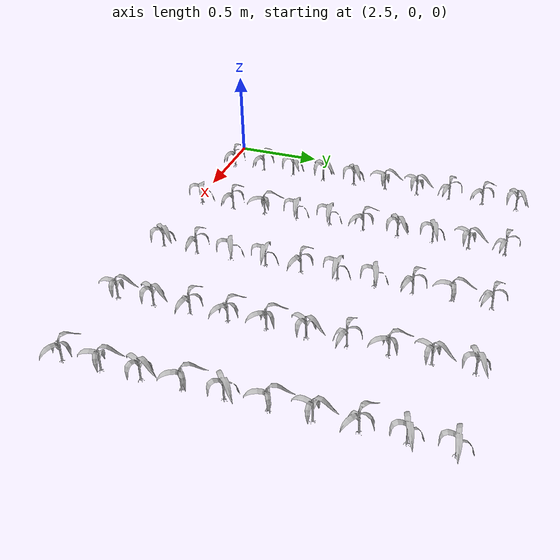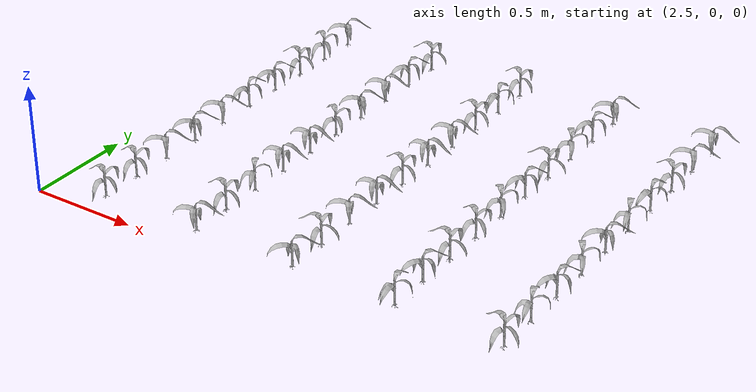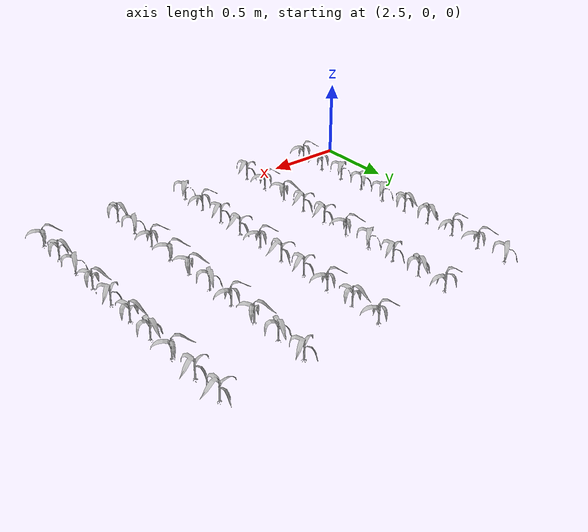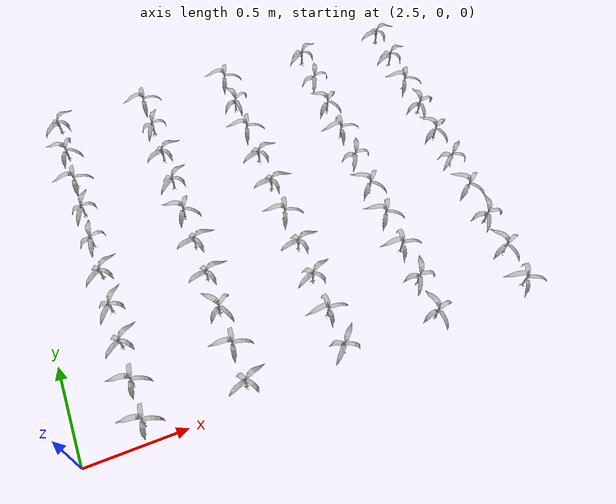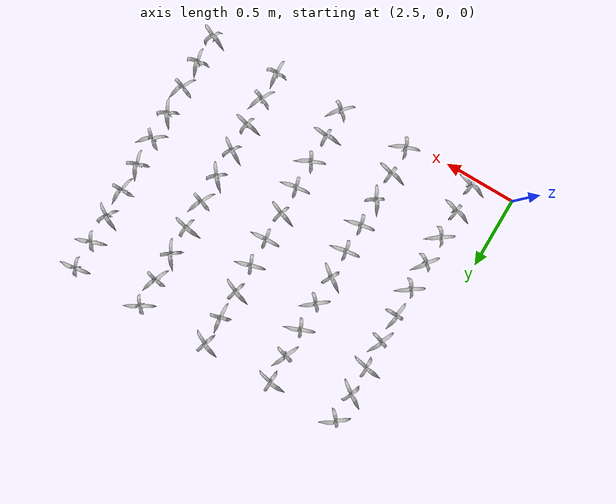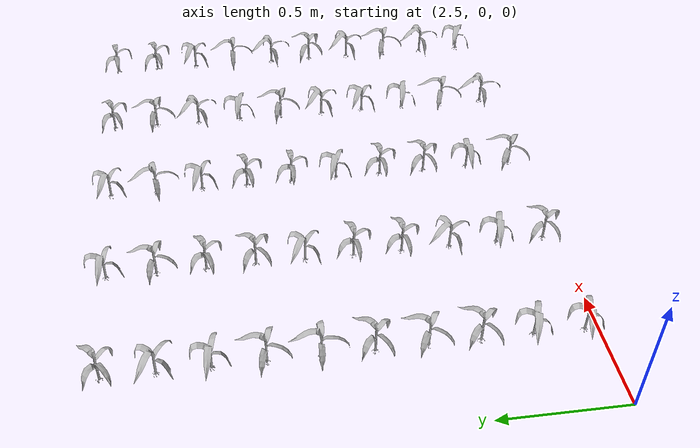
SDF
<sdf version="1.7">
 <world name="default">
  <model name="maize_2.816066532335432_0.07500000000000018">
   <static>1</static>
   <link name="link">
    <inertial>
     <mass>0.2</mass>
     <inertia>
      <ixx>0.166667</ixx>
      <ixy>0</ixy>
      <ixz>0</ixz>
      <iyy>0.166667</iyy>
      <iyz>0</iyz>
      <izz>0.166667</izz>
     </inertia>
    </inertial>
    <collision name="collision">
     <geometry><mesh><uri>model://corn_3/meshes/corn.dae</uri><scale>0.25 0.25 0.25</scale></mesh></geometry>
     <surface>
      <friction><ode><mu>0</mu><mu2>0</mu2></ode></friction>
      <contact><ode><kp>0</kp><kd>0</kd><max_vel>0</max_vel><min_depth>0.002</min_depth></ode></contact>
     </surface>
    </collision>
    <visual name="visual">
     <geometry><mesh><uri>model://corn_3/meshes/corn.dae</uri><scale>0.25 0.25 0.25</scale></mesh></geometry>
    </visual>
    <velocity_decay><linear>0</linear><angular>0</angular></velocity_decay>
   </link>
   <pose>2.81607 0.075 0.05 0 -0 2.91875</pose>
  </model>
  <model name="maize_2.816066532335432_0.27000000000000046">
   <static>1</static>
   <link name="link">
    <inertial>
     <mass>0.2</mass>
     <inertia>
      <ixx>0.166667</ixx>
      <ixy>0</ixy>
      <ixz>0</ixz>
      <iyy>0.166667</iyy>
      <iyz>0</iyz>
      <izz>0.166667</izz>
     </inertia>
    </inertial>
    <collision name="collision">
     <geometry><mesh><uri>model://corn_3/meshes/corn.dae</uri><scale>0.25 0.25 0.25</scale></mesh></geometry>
     <surface>
      <friction><ode><mu>0</mu><mu2>0</mu2></ode></friction>
      <contact><ode><kp>0</kp><kd>0</kd><max_vel>0</max_vel><min_depth>0.002</min_depth></ode></contact>
     </surface>
    </collision>
    <visual name="visual">
     <geometry><mesh><uri>model://corn_3/meshes/corn.dae</uri><scale>0.25 0.25 0.25</scale></mesh></geometry>
    </visual>
    <velocity_decay><linear>0</linear><angular>0</angular></velocity_decay>
   </link>
   <pose>2.81607 0.27 0.05 0 -0 2.89015</pose>
  </model>
  <model name="maize_2.816066532335432_0.46500000000000075">
   <static>1</static>
   <link name="link">
    <inertial>
     <mass>0.2</mass>
     <inertia>
      <ixx>0.166667</ixx>
      <ixy>0</ixy>
      <ixz>0</ixz>
      <iyy>0.166667</iyy>
      <iyz>0</iyz>
      <izz>0.166667</izz>
     </inertia>
    </inertial>
    <collision name="collision">
     <geometry><mesh><uri>model://corn_3/meshes/corn.dae</uri><scale>0.25 0.25 0.25</scale></mesh></geometry>
     <surface>
      <friction><ode><mu>0</mu><mu2>0</mu2></ode></friction>
      <contact><ode><kp>0</kp><kd>0</kd><max_vel>0</max_vel><min_depth>0.002</min_depth></ode></contact>
     </surface>
    </collision>
    <visual name="visual">
     <geometry><mesh><uri>model://corn_3/meshes/corn.dae</uri><scale>0.25 0.25 0.25</scale></mesh></geometry>
    </visual>
    <velocity_decay><linear>0</linear><angular>0</angular></velocity_decay>
   </link>
   <pose>2.81607 0.465 0.05 0 -0 0.669238</pose>
  </model>
  <model name="maize_2.816066532335432_0.6600000000000001">
   <static>1</static>
   <link name="link">
    <inertial>
     <mass>0.2</mass>
     <inertia>
      <ixx>0.166667</ixx>
      <ixy>0</ixy>
      <ixz>0</ixz>
      <iyy>0.166667</iyy>
      <iyz>0</iyz>
      <izz>0.166667</izz>
     </inertia>
    </inertial>
    <collision name="collision">
     <geometry><mesh><uri>model://corn_3/meshes/corn.dae</uri><scale>0.25 0.25 0.25</scale></mesh></geometry>
     <surface>
      <friction><ode><mu>0</mu><mu2>0</mu2></ode></friction>
      <contact><ode><kp>0</kp><kd>0</kd><max_vel>0</max_vel><min_depth>0.002</min_depth></ode></contact>
     </surface>
    </collision>
    <visual name="visual">
     <geometry><mesh><uri>model://corn_3/meshes/corn.dae</uri><scale>0.25 0.25 0.25</scale></mesh></geometry>
    </visual>
    <velocity_decay><linear>0</linear><angular>0</angular></velocity_decay>
   </link>
   <pose>2.81607 0.66 0.05 0 -0 0.967541</pose>
  </model>
  <model name="maize_2.816066532335432_0.8550000000000004">
   <static>1</static>
   <link name="link">
    <inertial>
     <mass>0.2</mass>
     <inertia>
      <ixx>0.166667</ixx>
      <ixy>0</ixy>
      <ixz>0</ixz>
      <iyy>0.166667</iyy>
      <iyz>0</iyz>
      <izz>0.166667</izz>
     </inertia>
    </inertial>
    <collision name="collision">
     <geometry><mesh><uri>model://corn_3/meshes/corn.dae</uri><scale>0.25 0.25 0.25</scale></mesh></geometry>
     <surface>
      <friction><ode><mu>0</mu><mu2>0</mu2></ode></friction>
      <contact><ode><kp>0</kp><kd>0</kd><max_vel>0</max_vel><min_depth>0.002</min_depth></ode></contact>
     </surface>
    </collision>
    <visual name="visual">
     <geometry><mesh><uri>model://corn_3/meshes/corn.dae</uri><scale>0.25 0.25 0.25</scale></mesh></geometry>
    </visual>
    <velocity_decay><linear>0</linear><angular>0</angular></velocity_decay>
   </link>
   <pose>2.81607 0.855 0.05 0 -0 0.657436</pose>
  </model>
  <model name="maize_2.816066532335432_1.0500000000000007">
   <static>1</static>
   <link name="link">
    <inertial>
     <mass>0.2</mass>
     <inertia>
      <ixx>0.166667</ixx>
      <ixy>0</ixy>
      <ixz>0</ixz>
      <iyy>0.166667</iyy>
      <iyz>0</iyz>
      <izz>0.166667</izz>
     </inertia>
    </inertial>
    <collision name="collision">
     <geometry><mesh><uri>model://corn_3/meshes/corn.dae</uri><scale>0.25 0.25 0.25</scale></mesh></geometry>
     <surface>
      <friction><ode><mu>0</mu><mu2>0</mu2></ode></friction>
      <contact><ode><kp>0</kp><kd>0</kd><max_vel>0</max_vel><min_depth>0.002</min_depth></ode></contact>
     </surface>
    </collision>
    <visual name="visual">
     <geometry><mesh><uri>model://corn_3/meshes/corn.dae</uri><scale>0.25 0.25 0.25</scale></mesh></geometry>
    </visual>
    <velocity_decay><linear>0</linear><angular>0</angular></velocity_decay>
   </link>
   <pose>2.81607 1.05 0.05 0 -0 1.4945</pose>
  </model>
  <model name="maize_2.816066532335432_1.245">
   <static>1</static>
   <link name="link">
    <inertial>
     <mass>0.2</mass>
     <inertia>
      <ixx>0.166667</ixx>
      <ixy>0</ixy>
      <ixz>0</ixz>
      <iyy>0.166667</iyy>
      <iyz>0</iyz>
      <izz>0.166667</izz>
     </inertia>
    </inertial>
    <collision name="collision">
     <geometry><mesh><uri>model://corn_3/meshes/corn.dae</uri><scale>0.25 0.25 0.25</scale></mesh></geometry>
     <surface>
      <friction><ode><mu>0</mu><mu2>0</mu2></ode></friction>
      <contact><ode><kp>0</kp><kd>0</kd><max_vel>0</max_vel><min_depth>0.002</min_depth></ode></contact>
     </surface>
    </collision>
    <visual name="visual">
     <geometry><mesh><uri>model://corn_3/meshes/corn.dae</uri><scale>0.25 0.25 0.25</scale></mesh></geometry>
    </visual>
    <velocity_decay><linear>0</linear><angular>0</angular></velocity_decay>
   </link>
   <pose>2.81607 1.245 0.05 0 -0 1.20353</pose>
  </model>
  <model name="maize_2.816066532335432_1.4400000000000004">
   <static>1</static>
   <link name="link">
    <inertial>
     <mass>0.2</mass>
     <inertia>
      <ixx>0.166667</ixx>
      <ixy>0</ixy>
      <ixz>0</ixz>
      <iyy>0.166667</iyy>
      <iyz>0</iyz>
      <izz>0.166667</izz>
     </inertia>
    </inertial>
    <collision name="collision">
     <geometry><mesh><uri>model://corn_3/meshes/corn.dae</uri><scale>0.25 0.25 0.25</scale></mesh></geometry>
     <surface>
      <friction><ode><mu>0</mu><mu2>0</mu2></ode></friction>
      <contact><ode><kp>0</kp><kd>0</kd><max_vel>0</max_vel><min_depth>0.002</min_depth></ode></contact>
     </surface>
    </collision>
    <visual name="visual">
     <geometry><mesh><uri>model://corn_3/meshes/corn.dae</uri><scale>0.25 0.25 0.25</scale></mesh></geometry>
    </visual>
    <velocity_decay><linear>0</linear><angular>0</angular></velocity_decay>
   </link>
   <pose>2.81607 1.44 0.05 0 -0 3.00998</pose>
  </model>
  <model name="maize_2.816066532335432_1.6350000000000007">
   <static>1</static>
   <link name="link">
    <inertial>
     <mass>0.2</mass>
     <inertia>
      <ixx>0.166667</ixx>
      <ixy>0</ixy>
      <ixz>0</ixz>
      <iyy>0.166667</iyy>
      <iyz>0</iyz>
      <izz>0.166667</izz>
     </inertia>
    </inertial>
    <collision name="collision">
     <geometry><mesh><uri>model://corn_3/meshes/corn.dae</uri><scale>0.25 0.25 0.25</scale></mesh></geometry>
     <surface>
      <friction><ode><mu>0</mu><mu2>0</mu2></ode></friction>
      <contact><ode><kp>0</kp><kd>0</kd><max_vel>0</max_vel><min_depth>0.002</min_depth></ode></contact>
     </surface>
    </collision>
    <visual name="visual">
     <geometry><mesh><uri>model://corn_3/meshes/corn.dae</uri><scale>0.25 0.25 0.25</scale></mesh></geometry>
    </visual>
    <velocity_decay><linear>0</linear><angular>0</angular></velocity_decay>
   </link>
   <pose>2.81607 1.635 0.05 0 -0 2.59487</pose>
  </model>
  <model name="maize_2.816066532335432_1.83">
   <static>1</static>
   <link name="link">
    <inertial>
     <mass>0.2</mass>
     <inertia>
      <ixx>0.166667</ixx>
      <ixy>0</ixy>
      <ixz>0</ixz>
      <iyy>0.166667</iyy>
      <iyz>0</iyz>
      <izz>0.166667</izz>
     </inertia>
    </inertial>
    <collision name="collision">
     <geometry><mesh><uri>model://corn_3/meshes/corn.dae</uri><scale>0.25 0.25 0.25</scale></mesh></geometry>
     <surface>
      <friction><ode><mu>0</mu><mu2>0</mu2></ode></friction>
      <contact><ode><kp>0</kp><kd>0</kd><max_vel>0</max_vel><min_depth>0.002</min_depth></ode></contact>
     </surface>
    </collision>
    <visual name="visual">
     <geometry><mesh><uri>model://corn_3/meshes/corn.dae</uri><scale>0.25 0.25 0.25</scale></mesh></geometry>
    </visual>
    <velocity_decay><linear>0</linear><angular>0</angular></velocity_decay>
   </link>
   <pose>2.81607 1.83 0.05 0 -0 0.683523</pose>
  </model>
  <model name="maize_3.304538114598593_0.07500000000000018">
   <static>1</static>
   <link name="link">
    <inertial>
     <mass>0.2</mass>
     <inertia>
      <ixx>0.166667</ixx>
      <ixy>0</ixy>
      <ixz>0</ixz>
      <iyy>0.166667</iyy>
      <iyz>0</iyz>
      <izz>0.166667</izz>
     </inertia>
    </inertial>
    <collision name="collision">
     <geometry><mesh><uri>model://corn_3/meshes/corn.dae</uri><scale>0.25 0.25 0.25</scale></mesh></geometry>
     <surface>
      <friction><ode><mu>0</mu><mu2>0</mu2></ode></friction>
      <contact><ode><kp>0</kp><kd>0</kd><max_vel>0</max_vel><min_depth>0.002</min_depth></ode></contact>
     </surface>
    </collision>
    <visual name="visual">
     <geometry><mesh><uri>model://corn_3/meshes/corn.dae</uri><scale>0.25 0.25 0.25</scale></mesh></geometry>
    </visual>
    <velocity_decay><linear>0</linear><angular>0</angular></velocity_decay>
   </link>
   <pose>3.30454 0.075 0.05 0 -0 0.448473</pose>
  </model>
  <model name="maize_3.304538114598593_0.27000000000000046">
   <static>1</static>
   <link name="link">
    <inertial>
     <mass>0.2</mass>
     <inertia>
      <ixx>0.166667</ixx>
      <ixy>0</ixy>
      <ixz>0</ixz>
      <iyy>0.166667</iyy>
      <iyz>0</iyz>
      <izz>0.166667</izz>
     </inertia>
    </inertial>
    <collision name="collision">
     <geometry><mesh><uri>model://corn_3/meshes/corn.dae</uri><scale>0.25 0.25 0.25</scale></mesh></geometry>
     <surface>
      <friction><ode><mu>0</mu><mu2>0</mu2></ode></friction>
      <contact><ode><kp>0</kp><kd>0</kd><max_vel>0</max_vel><min_depth>0.002</min_depth></ode></contact>
     </surface>
    </collision>
    <visual name="visual">
     <geometry><mesh><uri>model://corn_3/meshes/corn.dae</uri><scale>0.25 0.25 0.25</scale></mesh></geometry>
    </visual>
    <velocity_decay><linear>0</linear><angular>0</angular></velocity_decay>
   </link>
   <pose>3.30454 0.27 0.05 0 -0 2.9557</pose>
  </model>
  <model name="maize_3.304538114598593_0.46500000000000075">
   <static>1</static>
   <link name="link">
    <inertial>
     <mass>0.2</mass>
     <inertia>
      <ixx>0.166667</ixx>
      <ixy>0</ixy>
      <ixz>0</ixz>
      <iyy>0.166667</iyy>
      <iyz>0</iyz>
      <izz>0.166667</izz>
     </inertia>
    </inertial>
    <collision name="collision">
     <geometry><mesh><uri>model://corn_3/meshes/corn.dae</uri><scale>0.25 0.25 0.25</scale></mesh></geometry>
     <surface>
      <friction><ode><mu>0</mu><mu2>0</mu2></ode></friction>
      <contact><ode><kp>0</kp><kd>0</kd><max_vel>0</max_vel><min_depth>0.002</min_depth></ode></contact>
     </surface>
    </collision>
    <visual name="visual">
     <geometry><mesh><uri>model://corn_3/meshes/corn.dae</uri><scale>0.25 0.25 0.25</scale></mesh></geometry>
    </visual>
    <velocity_decay><linear>0</linear><angular>0</angular></velocity_decay>
   </link>
   <pose>3.30454 0.465 0.05 0 -0 2.14601</pose>
  </model>
  <model name="maize_3.304538114598593_0.6600000000000001">
   <static>1</static>
   <link name="link">
    <inertial>
     <mass>0.2</mass>
     <inertia>
      <ixx>0.166667</ixx>
      <ixy>0</ixy>
      <ixz>0</ixz>
      <iyy>0.166667</iyy>
      <iyz>0</iyz>
      <izz>0.166667</izz>
     </inertia>
    </inertial>
    <collision name="collision">
     <geometry><mesh><uri>model://corn_3/meshes/corn.dae</uri><scale>0.25 0.25 0.25</scale></mesh></geometry>
     <surface>
      <friction><ode><mu>0</mu><mu2>0</mu2></ode></friction>
      <contact><ode><kp>0</kp><kd>0</kd><max_vel>0</max_vel><min_depth>0.002</min_depth></ode></contact>
     </surface>
    </collision>
    <visual name="visual">
     <geometry><mesh><uri>model://corn_3/meshes/corn.dae</uri><scale>0.25 0.25 0.25</scale></mesh></geometry>
    </visual>
    <velocity_decay><linear>0</linear><angular>0</angular></velocity_decay>
   </link>
   <pose>3.30454 0.66 0.05 0 -0 0.255452</pose>
  </model>
  <model name="maize_3.304538114598593_0.8550000000000004">
   <static>1</static>
   <link name="link">
    <inertial>
     <mass>0.2</mass>
     <inertia>
      <ixx>0.166667</ixx>
      <ixy>0</ixy>
      <ixz>0</ixz>
      <iyy>0.166667</iyy>
      <iyz>0</iyz>
      <izz>0.166667</izz>
     </inertia>
    </inertial>
    <collision name="collision">
     <geometry><mesh><uri>model://corn_3/meshes/corn.dae</uri><scale>0.25 0.25 0.25</scale></mesh></geometry>
     <surface>
      <friction><ode><mu>0</mu><mu2>0</mu2></ode></friction>
      <contact><ode><kp>0</kp><kd>0</kd><max_vel>0</max_vel><min_depth>0.002</min_depth></ode></contact>
     </surface>
    </collision>
    <visual name="visual">
     <geometry><mesh><uri>model://corn_3/meshes/corn.dae</uri><scale>0.25 0.25 0.25</scale></mesh></geometry>
    </visual>
    <velocity_decay><linear>0</linear><angular>0</angular></velocity_decay>
   </link>
   <pose>3.30454 0.855 0.05 0 -0 0.218896</pose>
  </model>
  <model name="maize_3.304538114598593_1.0500000000000007">
   <static>1</static>
   <link name="link">
    <inertial>
     <mass>0.2</mass>
     <inertia>
      <ixx>0.166667</ixx>
      <ixy>0</ixy>
      <ixz>0</ixz>
      <iyy>0.166667</iyy>
      <iyz>0</iyz>
      <izz>0.166667</izz>
     </inertia>
    </inertial>
    <collision name="collision">
     <geometry><mesh><uri>model://corn_3/meshes/corn.dae</uri><scale>0.25 0.25 0.25</scale></mesh></geometry>
     <surface>
      <friction><ode><mu>0</mu><mu2>0</mu2></ode></friction>
      <contact><ode><kp>0</kp><kd>0</kd><max_vel>0</max_vel><min_depth>0.002</min_depth></ode></contact>
     </surface>
    </collision>
    <visual name="visual">
     <geometry><mesh><uri>model://corn_3/meshes/corn.dae</uri><scale>0.25 0.25 0.25</scale></mesh></geometry>
    </visual>
    <velocity_decay><linear>0</linear><angular>0</angular></velocity_decay>
   </link>
   <pose>3.30454 1.05 0.05 0 -0 2.57462</pose>
  </model>
  <model name="maize_3.304538114598593_1.245">
   <static>1</static>
   <link name="link">
    <inertial>
     <mass>0.2</mass>
     <inertia>
      <ixx>0.166667</ixx>
      <ixy>0</ixy>
      <ixz>0</ixz>
      <iyy>0.166667</iyy>
      <iyz>0</iyz>
      <izz>0.166667</izz>
     </inertia>
    </inertial>
    <collision name="collision">
     <geometry><mesh><uri>model://corn_3/meshes/corn.dae</uri><scale>0.25 0.25 0.25</scale></mesh></geometry>
     <surface>
      <friction><ode><mu>0</mu><mu2>0</mu2></ode></friction>
      <contact><ode><kp>0</kp><kd>0</kd><max_vel>0</max_vel><min_depth>0.002</min_depth></ode></contact>
     </surface>
    </collision>
    <visual name="visual">
     <geometry><mesh><uri>model://corn_3/meshes/corn.dae</uri><scale>0.25 0.25 0.25</scale></mesh></geometry>
    </visual>
    <velocity_decay><linear>0</linear><angular>0</angular></velocity_decay>
   </link>
   <pose>3.30454 1.245 0.05 0 -0 0.723373</pose>
  </model>
  <model name="maize_3.304538114598593_1.4400000000000004">
   <static>1</static>
   <link name="link">
    <inertial>
     <mass>0.2</mass>
     <inertia>
      <ixx>0.166667</ixx>
      <ixy>0</ixy>
      <ixz>0</ixz>
      <iyy>0.166667</iyy>
      <iyz>0</iyz>
      <izz>0.166667</izz>
     </inertia>
    </inertial>
    <collision name="collision">
     <geometry><mesh><uri>model://corn_3/meshes/corn.dae</uri><scale>0.25 0.25 0.25</scale></mesh></geometry>
     <surface>
      <friction><ode><mu>0</mu><mu2>0</mu2></ode></friction>
      <contact><ode><kp>0</kp><kd>0</kd><max_vel>0</max_vel><min_depth>0.002</min_depth></ode></contact>
     </surface>
    </collision>
    <visual name="visual">
     <geometry><mesh><uri>model://corn_3/meshes/corn.dae</uri><scale>0.25 0.25 0.25</scale></mesh></geometry>
    </visual>
    <velocity_decay><linear>0</linear><angular>0</angular></velocity_decay>
   </link>
   <pose>3.30454 1.44 0.05 0 -0 0.406437</pose>
  </model>
  <model name="maize_3.304538114598593_1.6350000000000007">
   <static>1</static>
   <link name="link">
    <inertial>
     <mass>0.2</mass>
     <inertia>
      <ixx>0.166667</ixx>
      <ixy>0</ixy>
      <ixz>0</ixz>
      <iyy>0.166667</iyy>
      <iyz>0</iyz>
      <izz>0.166667</izz>
     </inertia>
    </inertial>
    <collision name="collision">
     <geometry><mesh><uri>model://corn_3/meshes/corn.dae</uri><scale>0.25 0.25 0.25</scale></mesh></geometry>
     <surface>
      <friction><ode><mu>0</mu><mu2>0</mu2></ode></friction>
      <contact><ode><kp>0</kp><kd>0</kd><max_vel>0</max_vel><min_depth>0.002</min_depth></ode></contact>
     </surface>
    </collision>
    <visual name="visual">
     <geometry><mesh><uri>model://corn_3/meshes/corn.dae</uri><scale>0.25 0.25 0.25</scale></mesh></geometry>
    </visual>
    <velocity_decay><linear>0</linear><angular>0</angular></velocity_decay>
   </link>
   <pose>3.30454 1.635 0.05 0 -0 1.19812</pose>
  </model>
  <model name="maize_3.304538114598593_1.83">
   <static>1</static>
   <link name="link">
    <inertial>
     <mass>0.2</mass>
     <inertia>
      <ixx>0.166667</ixx>
      <ixy>0</ixy>
      <ixz>0</ixz>
      <iyy>0.166667</iyy>
      <iyz>0</iyz>
      <izz>0.166667</izz>
     </inertia>
    </inertial>
    <collision name="collision">
     <geometry><mesh><uri>model://corn_3/meshes/corn.dae</uri><scale>0.25 0.25 0.25</scale></mesh></geometry>
     <surface>
      <friction><ode><mu>0</mu><mu2>0</mu2></ode></friction>
      <contact><ode><kp>0</kp><kd>0</kd><max_vel>0</max_vel><min_depth>0.002</min_depth></ode></contact>
     </surface>
    </collision>
    <visual name="visual">
     <geometry><mesh><uri>model://corn_3/meshes/corn.dae</uri><scale>0.25 0.25 0.25</scale></mesh></geometry>
    </visual>
    <velocity_decay><linear>0</linear><angular>0</angular></velocity_decay>
   </link>
   <pose>3.30454 1.83 0.05 0 -0 3.02754</pose>
  </model>
  <model name="maize_3.792272817950934_0.07500000000000018">
   <static>1</static>
   <link name="link">
    <inertial>
     <mass>0.2</mass>
     <inertia>
      <ixx>0.166667</ixx>
      <ixy>0</ixy>
      <ixz>0</ixz>
      <iyy>0.166667</iyy>
      <iyz>0</iyz>
      <izz>0.166667</izz>
     </inertia>
    </inertial>
    <collision name="collision">
     <geometry><mesh><uri>model://corn_3/meshes/corn.dae</uri><scale>0.25 0.25 0.25</scale></mesh></geometry>
     <surface>
      <friction><ode><mu>0</mu><mu2>0</mu2></ode></friction>
      <contact><ode><kp>0</kp><kd>0</kd><max_vel>0</max_vel><min_depth>0.002</min_depth></ode></contact>
     </surface>
    </collision>
    <visual name="visual">
     <geometry><mesh><uri>model://corn_3/meshes/corn.dae</uri><scale>0.25 0.25 0.25</scale></mesh></geometry>
    </visual>
    <velocity_decay><linear>0</linear><angular>0</angular></velocity_decay>
   </link>
   <pose>3.79227 0.075 0.05 0 -0 0.899333</pose>
  </model>
  <model name="maize_3.792272817950934_0.27000000000000046">
   <static>1</static>
   <link name="link">
    <inertial>
     <mass>0.2</mass>
     <inertia>
      <ixx>0.166667</ixx>
      <ixy>0</ixy>
      <ixz>0</ixz>
      <iyy>0.166667</iyy>
      <iyz>0</iyz>
      <izz>0.166667</izz>
     </inertia>
    </inertial>
    <collision name="collision">
     <geometry><mesh><uri>model://corn_3/meshes/corn.dae</uri><scale>0.25 0.25 0.25</scale></mesh></geometry>
     <surface>
      <friction><ode><mu>0</mu><mu2>0</mu2></ode></friction>
      <contact><ode><kp>0</kp><kd>0</kd><max_vel>0</max_vel><min_depth>0.002</min_depth></ode></contact>
     </surface>
    </collision>
    <visual name="visual">
     <geometry><mesh><uri>model://corn_3/meshes/corn.dae</uri><scale>0.25 0.25 0.25</scale></mesh></geometry>
    </visual>
    <velocity_decay><linear>0</linear><angular>0</angular></velocity_decay>
   </link>
   <pose>3.79227 0.27 0.05 0 -0 3.12043</pose>
  </model>
  <model name="maize_3.792272817950934_0.46500000000000075">
   <static>1</static>
   <link name="link">
    <inertial>
     <mass>0.2</mass>
     <inertia>
      <ixx>0.166667</ixx>
      <ixy>0</ixy>
      <ixz>0</ixz>
      <iyy>0.166667</iyy>
      <iyz>0</iyz>
      <izz>0.166667</izz>
     </inertia>
    </inertial>
    <collision name="collision">
     <geometry><mesh><uri>model://corn_3/meshes/corn.dae</uri><scale>0.25 0.25 0.25</scale></mesh></geometry>
     <surface>
      <friction><ode><mu>0</mu><mu2>0</mu2></ode></friction>
      <contact><ode><kp>0</kp><kd>0</kd><max_vel>0</max_vel><min_depth>0.002</min_depth></ode></contact>
     </surface>
    </collision>
    <visual name="visual">
     <geometry><mesh><uri>model://corn_3/meshes/corn.dae</uri><scale>0.25 0.25 0.25</scale></mesh></geometry>
    </visual>
    <velocity_decay><linear>0</linear><angular>0</angular></velocity_decay>
   </link>
   <pose>3.79227 0.465 0.05 0 -0 0.496805</pose>
  </model>
  <model name="maize_3.792272817950934_0.6600000000000001">
   <static>1</static>
   <link name="link">
    <inertial>
     <mass>0.2</mass>
     <inertia>
      <ixx>0.166667</ixx>
      <ixy>0</ixy>
      <ixz>0</ixz>
      <iyy>0.166667</iyy>
      <iyz>0</iyz>
      <izz>0.166667</izz>
     </inertia>
    </inertial>
    <collision name="collision">
     <geometry><mesh><uri>model://corn_3/meshes/corn.dae</uri><scale>0.25 0.25 0.25</scale></mesh></geometry>
     <surface>
      <friction><ode><mu>0</mu><mu2>0</mu2></ode></friction>
      <contact><ode><kp>0</kp><kd>0</kd><max_vel>0</max_vel><min_depth>0.002</min_depth></ode></contact>
     </surface>
    </collision>
    <visual name="visual">
     <geometry><mesh><uri>model://corn_3/meshes/corn.dae</uri><scale>0.25 0.25 0.25</scale></mesh></geometry>
    </visual>
    <velocity_decay><linear>0</linear><angular>0</angular></velocity_decay>
   </link>
   <pose>3.79227 0.66 0.05 0 -0 0.216539</pose>
  </model>
  <model name="maize_3.792272817950934_0.8550000000000004">
   <static>1</static>
   <link name="link">
    <inertial>
     <mass>0.2</mass>
     <inertia>
      <ixx>0.166667</ixx>
      <ixy>0</ixy>
      <ixz>0</ixz>
      <iyy>0.166667</iyy>
      <iyz>0</iyz>
      <izz>0.166667</izz>
     </inertia>
    </inertial>
    <collision name="collision">
     <geometry><mesh><uri>model://corn_3/meshes/corn.dae</uri><scale>0.25 0.25 0.25</scale></mesh></geometry>
     <surface>
      <friction><ode><mu>0</mu><mu2>0</mu2></ode></friction>
      <contact><ode><kp>0</kp><kd>0</kd><max_vel>0</max_vel><min_depth>0.002</min_depth></ode></contact>
     </surface>
    </collision>
    <visual name="visual">
     <geometry><mesh><uri>model://corn_3/meshes/corn.dae</uri><scale>0.25 0.25 0.25</scale></mesh></geometry>
    </visual>
    <velocity_decay><linear>0</linear><angular>0</angular></velocity_decay>
   </link>
   <pose>3.79227 0.855 0.05 0 -0 2.83434</pose>
  </model>
  <model name="maize_3.792272817950934_1.0500000000000007">
   <static>1</static>
   <link name="link">
    <inertial>
     <mass>0.2</mass>
     <inertia>
      <ixx>0.166667</ixx>
      <ixy>0</ixy>
      <ixz>0</ixz>
      <iyy>0.166667</iyy>
      <iyz>0</iyz>
      <izz>0.166667</izz>
     </inertia>
    </inertial>
    <collision name="collision">
     <geometry><mesh><uri>model://corn_3/meshes/corn.dae</uri><scale>0.25 0.25 0.25</scale></mesh></geometry>
     <surface>
      <friction><ode><mu>0</mu><mu2>0</mu2></ode></friction>
      <contact><ode><kp>0</kp><kd>0</kd><max_vel>0</max_vel><min_depth>0.002</min_depth></ode></contact>
     </surface>
    </collision>
    <visual name="visual">
     <geometry><mesh><uri>model://corn_3/meshes/corn.dae</uri><scale>0.25 0.25 0.25</scale></mesh></geometry>
    </visual>
    <velocity_decay><linear>0</linear><angular>0</angular></velocity_decay>
   </link>
   <pose>3.79227 1.05 0.05 0 -0 0.113888</pose>
  </model>
  <model name="maize_3.792272817950934_1.245">
   <static>1</static>
   <link name="link">
    <inertial>
     <mass>0.2</mass>
     <inertia>
      <ixx>0.166667</ixx>
      <ixy>0</ixy>
      <ixz>0</ixz>
      <iyy>0.166667</iyy>
      <iyz>0</iyz>
      <izz>0.166667</izz>
     </inertia>
    </inertial>
    <collision name="collision">
     <geometry><mesh><uri>model://corn_3/meshes/corn.dae</uri><scale>0.25 0.25 0.25</scale></mesh></geometry>
     <surface>
      <friction><ode><mu>0</mu><mu2>0</mu2></ode></friction>
      <contact><ode><kp>0</kp><kd>0</kd><max_vel>0</max_vel><min_depth>0.002</min_depth></ode></contact>
     </surface>
    </collision>
    <visual name="visual">
     <geometry><mesh><uri>model://corn_3/meshes/corn.dae</uri><scale>0.25 0.25 0.25</scale></mesh></geometry>
    </visual>
    <velocity_decay><linear>0</linear><angular>0</angular></velocity_decay>
   </link>
   <pose>3.79227 1.245 0.05 0 -0 0.334768</pose>
  </model>
  <model name="maize_3.792272817950934_1.4400000000000004">
   <static>1</static>
   <link name="link">
    <inertial>
     <mass>0.2</mass>
     <inertia>
      <ixx>0.166667</ixx>
      <ixy>0</ixy>
      <ixz>0</ixz>
      <iyy>0.166667</iyy>
      <iyz>0</iyz>
      <izz>0.166667</izz>
     </inertia>
    </inertial>
    <collision name="collision">
     <geometry><mesh><uri>model://corn_3/meshes/corn.dae</uri><scale>0.25 0.25 0.25</scale></mesh></geometry>
     <surface>
      <friction><ode><mu>0</mu><mu2>0</mu2></ode></friction>
      <contact><ode><kp>0</kp><kd>0</kd><max_vel>0</max_vel><min_depth>0.002</min_depth></ode></contact>
     </surface>
    </collision>
    <visual name="visual">
     <geometry><mesh><uri>model://corn_3/meshes/corn.dae</uri><scale>0.25 0.25 0.25</scale></mesh></geometry>
    </visual>
    <velocity_decay><linear>0</linear><angular>0</angular></velocity_decay>
   </link>
   <pose>3.79227 1.44 0.05 0 -0 2.83257</pose>
  </model>
  <model name="maize_3.792272817950934_1.6350000000000007">
   <static>1</static>
   <link name="link">
    <inertial>
     <mass>0.2</mass>
     <inertia>
      <ixx>0.166667</ixx>
      <ixy>0</ixy>
      <ixz>0</ixz>
      <iyy>0.166667</iyy>
      <iyz>0</iyz>
      <izz>0.166667</izz>
     </inertia>
    </inertial>
    <collision name="collision">
     <geometry><mesh><uri>model://corn_3/meshes/corn.dae</uri><scale>0.25 0.25 0.25</scale></mesh></geometry>
     <surface>
      <friction><ode><mu>0</mu><mu2>0</mu2></ode></friction>
      <contact><ode><kp>0</kp><kd>0</kd><max_vel>0</max_vel><min_depth>0.002</min_depth></ode></contact>
     </surface>
    </collision>
    <visual name="visual">
     <geometry><mesh><uri>model://corn_3/meshes/corn.dae</uri><scale>0.25 0.25 0.25</scale></mesh></geometry>
    </visual>
    <velocity_decay><linear>0</linear><angular>0</angular></velocity_decay>
   </link>
   <pose>3.79227 1.635 0.05 0 -0 1.72874</pose>
  </model>
  <model name="maize_3.792272817950934_1.83">
   <static>1</static>
   <link name="link">
    <inertial>
     <mass>0.2</mass>
     <inertia>
      <ixx>0.166667</ixx>
      <ixy>0</ixy>
      <ixz>0</ixz>
      <iyy>0.166667</iyy>
      <iyz>0</iyz>
      <izz>0.166667</izz>
     </inertia>
    </inertial>
    <collision name="collision">
     <geometry><mesh><uri>model://corn_3/meshes/corn.dae</uri><scale>0.25 0.25 0.25</scale></mesh></geometry>
     <surface>
      <friction><ode><mu>0</mu><mu2>0</mu2></ode></friction>
      <contact><ode><kp>0</kp><kd>0</kd><max_vel>0</max_vel><min_depth>0.002</min_depth></ode></contact>
     </surface>
    </collision>
    <visual name="visual">
     <geometry><mesh><uri>model://corn_3/meshes/corn.dae</uri><scale>0.25 0.25 0.25</scale></mesh></geometry>
    </visual>
    <velocity_decay><linear>0</linear><angular>0</angular></velocity_decay>
   </link>
   <pose>3.79227 1.83 0.05 0 -0 2.78573</pose>
  </model>
  <model name="maize_4.279271472945556_0.07500000000000018">
   <static>1</static>
   <link name="link">
    <inertial>
     <mass>0.2</mass>
     <inertia>
      <ixx>0.166667</ixx>
      <ixy>0</ixy>
      <ixz>0</ixz>
      <iyy>0.166667</iyy>
      <iyz>0</iyz>
      <izz>0.166667</izz>
     </inertia>
    </inertial>
    <collision name="collision">
     <geometry><mesh><uri>model://corn_3/meshes/corn.dae</uri><scale>0.25 0.25 0.25</scale></mesh></geometry>
     <surface>
      <friction><ode><mu>0</mu><mu2>0</mu2></ode></friction>
      <contact><ode><kp>0</kp><kd>0</kd><max_vel>0</max_vel><min_depth>0.002</min_depth></ode></contact>
     </surface>
    </collision>
    <visual name="visual">
     <geometry><mesh><uri>model://corn_3/meshes/corn.dae</uri><scale>0.25 0.25 0.25</scale></mesh></geometry>
    </visual>
    <velocity_decay><linear>0</linear><angular>0</angular></velocity_decay>
   </link>
   <pose>4.27927 0.075 0.05 0 -0 1.69926</pose>
  </model>
  <model name="maize_4.279271472945556_0.27000000000000046">
   <static>1</static>
   <link name="link">
    <inertial>
     <mass>0.2</mass>
     <inertia>
      <ixx>0.166667</ixx>
      <ixy>0</ixy>
      <ixz>0</ixz>
      <iyy>0.166667</iyy>
      <iyz>0</iyz>
      <izz>0.166667</izz>
     </inertia>
    </inertial>
    <collision name="collision">
     <geometry><mesh><uri>model://corn_3/meshes/corn.dae</uri><scale>0.25 0.25 0.25</scale></mesh></geometry>
     <surface>
      <friction><ode><mu>0</mu><mu2>0</mu2></ode></friction>
      <contact><ode><kp>0</kp><kd>0</kd><max_vel>0</max_vel><min_depth>0.002</min_depth></ode></contact>
     </surface>
    </collision>
    <visual name="visual">
     <geometry><mesh><uri>model://corn_3/meshes/corn.dae</uri><scale>0.25 0.25 0.25</scale></mesh></geometry>
    </visual>
    <velocity_decay><linear>0</linear><angular>0</angular></velocity_decay>
   </link>
   <pose>4.27927 0.27 0.05 0 -0 1.17204</pose>
  </model>
  <model name="maize_4.279271472945556_0.46500000000000075">
   <static>1</static>
   <link name="link">
    <inertial>
     <mass>0.2</mass>
     <inertia>
      <ixx>0.166667</ixx>
      <ixy>0</ixy>
      <ixz>0</ixz>
      <iyy>0.166667</iyy>
      <iyz>0</iyz>
      <izz>0.166667</izz>
     </inertia>
    </inertial>
    <collision name="collision">
     <geometry><mesh><uri>model://corn_3/meshes/corn.dae</uri><scale>0.25 0.25 0.25</scale></mesh></geometry>
     <surface>
      <friction><ode><mu>0</mu><mu2>0</mu2></ode></friction>
      <contact><ode><kp>0</kp><kd>0</kd><max_vel>0</max_vel><min_depth>0.002</min_depth></ode></contact>
     </surface>
    </collision>
    <visual name="visual">
     <geometry><mesh><uri>model://corn_3/meshes/corn.dae</uri><scale>0.25 0.25 0.25</scale></mesh></geometry>
    </visual>
    <velocity_decay><linear>0</linear><angular>0</angular></velocity_decay>
   </link>
   <pose>4.27927 0.465 0.05 0 -0 2.98165</pose>
  </model>
  <model name="maize_4.279271472945556_0.6600000000000001">
   <static>1</static>
   <link name="link">
    <inertial>
     <mass>0.2</mass>
     <inertia>
      <ixx>0.166667</ixx>
      <ixy>0</ixy>
      <ixz>0</ixz>
      <iyy>0.166667</iyy>
      <iyz>0</iyz>
      <izz>0.166667</izz>
     </inertia>
    </inertial>
    <collision name="collision">
     <geometry><mesh><uri>model://corn_3/meshes/corn.dae</uri><scale>0.25 0.25 0.25</scale></mesh></geometry>
     <surface>
      <friction><ode><mu>0</mu><mu2>0</mu2></ode></friction>
      <contact><ode><kp>0</kp><kd>0</kd><max_vel>0</max_vel><min_depth>0.002</min_depth></ode></contact>
     </surface>
    </collision>
    <visual name="visual">
     <geometry><mesh><uri>model://corn_3/meshes/corn.dae</uri><scale>0.25 0.25 0.25</scale></mesh></geometry>
    </visual>
    <velocity_decay><linear>0</linear><angular>0</angular></velocity_decay>
   </link>
   <pose>4.27927 0.66 0.05 0 -0 2.62503</pose>
  </model>
  <model name="maize_4.279271472945556_0.8550000000000004">
   <static>1</static>
   <link name="link">
    <inertial>
     <mass>0.2</mass>
     <inertia>
      <ixx>0.166667</ixx>
      <ixy>0</ixy>
      <ixz>0</ixz>
      <iyy>0.166667</iyy>
      <iyz>0</iyz>
      <izz>0.166667</izz>
     </inertia>
    </inertial>
    <collision name="collision">
     <geometry><mesh><uri>model://corn_3/meshes/corn.dae</uri><scale>0.25 0.25 0.25</scale></mesh></geometry>
     <surface>
      <friction><ode><mu>0</mu><mu2>0</mu2></ode></friction>
      <contact><ode><kp>0</kp><kd>0</kd><max_vel>0</max_vel><min_depth>0.002</min_depth></ode></contact>
     </surface>
    </collision>
    <visual name="visual">
     <geometry><mesh><uri>model://corn_3/meshes/corn.dae</uri><scale>0.25 0.25 0.25</scale></mesh></geometry>
    </visual>
    <velocity_decay><linear>0</linear><angular>0</angular></velocity_decay>
   </link>
   <pose>4.27927 0.855 0.05 0 -0 2.33304</pose>
  </model>
  <model name="maize_4.279271472945556_1.0500000000000007">
   <static>1</static>
   <link name="link">
    <inertial>
     <mass>0.2</mass>
     <inertia>
      <ixx>0.166667</ixx>
      <ixy>0</ixy>
      <ixz>0</ixz>
      <iyy>0.166667</iyy>
      <iyz>0</iyz>
      <izz>0.166667</izz>
     </inertia>
    </inertial>
    <collision name="collision">
     <geometry><mesh><uri>model://corn_3/meshes/corn.dae</uri><scale>0.25 0.25 0.25</scale></mesh></geometry>
     <surface>
      <friction><ode><mu>0</mu><mu2>0</mu2></ode></friction>
      <contact><ode><kp>0</kp><kd>0</kd><max_vel>0</max_vel><min_depth>0.002</min_depth></ode></contact>
     </surface>
    </collision>
    <visual name="visual">
     <geometry><mesh><uri>model://corn_3/meshes/corn.dae</uri><scale>0.25 0.25 0.25</scale></mesh></geometry>
    </visual>
    <velocity_decay><linear>0</linear><angular>0</angular></velocity_decay>
   </link>
   <pose>4.27927 1.05 0.05 0 -0 1.17622</pose>
  </model>
  <model name="maize_4.279271472945556_1.245">
   <static>1</static>
   <link name="link">
    <inertial>
     <mass>0.2</mass>
     <inertia>
      <ixx>0.166667</ixx>
      <ixy>0</ixy>
      <ixz>0</ixz>
      <iyy>0.166667</iyy>
      <iyz>0</iyz>
      <izz>0.166667</izz>
     </inertia>
    </inertial>
    <collision name="collision">
     <geometry><mesh><uri>model://corn_3/meshes/corn.dae</uri><scale>0.25 0.25 0.25</scale></mesh></geometry>
     <surface>
      <friction><ode><mu>0</mu><mu2>0</mu2></ode></friction>
      <contact><ode><kp>0</kp><kd>0</kd><max_vel>0</max_vel><min_depth>0.002</min_depth></ode></contact>
     </surface>
    </collision>
    <visual name="visual">
     <geometry><mesh><uri>model://corn_3/meshes/corn.dae</uri><scale>0.25 0.25 0.25</scale></mesh></geometry>
    </visual>
    <velocity_decay><linear>0</linear><angular>0</angular></velocity_decay>
   </link>
   <pose>4.27927 1.245 0.05 0 -0 3.0226</pose>
  </model>
  <model name="maize_4.279271472945556_1.4400000000000004">
   <static>1</static>
   <link name="link">
    <inertial>
     <mass>0.2</mass>
     <inertia>
      <ixx>0.166667</ixx>
      <ixy>0</ixy>
      <ixz>0</ixz>
      <iyy>0.166667</iyy>
      <iyz>0</iyz>
      <izz>0.166667</izz>
     </inertia>
    </inertial>
    <collision name="collision">
     <geometry><mesh><uri>model://corn_3/meshes/corn.dae</uri><scale>0.25 0.25 0.25</scale></mesh></geometry>
     <surface>
      <friction><ode><mu>0</mu><mu2>0</mu2></ode></friction>
      <contact><ode><kp>0</kp><kd>0</kd><max_vel>0</max_vel><min_depth>0.002</min_depth></ode></contact>
     </surface>
    </collision>
    <visual name="visual">
     <geometry><mesh><uri>model://corn_3/meshes/corn.dae</uri><scale>0.25 0.25 0.25</scale></mesh></geometry>
    </visual>
    <velocity_decay><linear>0</linear><angular>0</angular></velocity_decay>
   </link>
   <pose>4.27927 1.44 0.05 0 -0 2.19196</pose>
  </model>
  <model name="maize_4.279271472945556_1.6350000000000007">
   <static>1</static>
   <link name="link">
    <inertial>
     <mass>0.2</mass>
     <inertia>
      <ixx>0.166667</ixx>
      <ixy>0</ixy>
      <ixz>0</ixz>
      <iyy>0.166667</iyy>
      <iyz>0</iyz>
      <izz>0.166667</izz>
     </inertia>
    </inertial>
    <collision name="collision">
     <geometry><mesh><uri>model://corn_3/meshes/corn.dae</uri><scale>0.25 0.25 0.25</scale></mesh></geometry>
     <surface>
      <friction><ode><mu>0</mu><mu2>0</mu2></ode></friction>
      <contact><ode><kp>0</kp><kd>0</kd><max_vel>0</max_vel><min_depth>0.002</min_depth></ode></contact>
     </surface>
    </collision>
    <visual name="visual">
     <geometry><mesh><uri>model://corn_3/meshes/corn.dae</uri><scale>0.25 0.25 0.25</scale></mesh></geometry>
    </visual>
    <velocity_decay><linear>0</linear><angular>0</angular></velocity_decay>
   </link>
   <pose>4.27927 1.635 0.05 0 -0 1.24719</pose>
  </model>
  <model name="maize_4.279271472945556_1.83">
   <static>1</static>
   <link name="link">
    <inertial>
     <mass>0.2</mass>
     <inertia>
      <ixx>0.166667</ixx>
      <ixy>0</ixy>
      <ixz>0</ixz>
      <iyy>0.166667</iyy>
      <iyz>0</iyz>
      <izz>0.166667</izz>
     </inertia>
    </inertial>
    <collision name="collision">
     <geometry><mesh><uri>model://corn_3/meshes/corn.dae</uri><scale>0.25 0.25 0.25</scale></mesh></geometry>
     <surface>
      <friction><ode><mu>0</mu><mu2>0</mu2></ode></friction>
      <contact><ode><kp>0</kp><kd>0</kd><max_vel>0</max_vel><min_depth>0.002</min_depth></ode></contact>
     </surface>
    </collision>
    <visual name="visual">
     <geometry><mesh><uri>model://corn_3/meshes/corn.dae</uri><scale>0.25 0.25 0.25</scale></mesh></geometry>
    </visual>
    <velocity_decay><linear>0</linear><angular>0</angular></velocity_decay>
   </link>
   <pose>4.27927 1.83 0.05 0 -0 0.558808</pose>
  </model>
  <model name="maize_4.765534909304227_0.07500000000000018">
   <static>1</static>
   <link name="link">
    <inertial>
     <mass>0.2</mass>
     <inertia>
      <ixx>0.166667</ixx>
      <ixy>0</ixy>
      <ixz>0</ixz>
      <iyy>0.166667</iyy>
      <iyz>0</iyz>
      <izz>0.166667</izz>
     </inertia>
    </inertial>
    <collision name="collision">
     <geometry><mesh><uri>model://corn_3/meshes/corn.dae</uri><scale>0.25 0.25 0.25</scale></mesh></geometry>
     <surface>
      <friction><ode><mu>0</mu><mu2>0</mu2></ode></friction>
      <contact><ode><kp>0</kp><kd>0</kd><max_vel>0</max_vel><min_depth>0.002</min_depth></ode></contact>
     </surface>
    </collision>
    <visual name="visual">
     <geometry><mesh><uri>model://corn_3/meshes/corn.dae</uri><scale>0.25 0.25 0.25</scale></mesh></geometry>
    </visual>
    <velocity_decay><linear>0</linear><angular>0</angular></velocity_decay>
   </link>
   <pose>4.76553 0.075 0.05 0 -0 2.77333</pose>
  </model>
  <model name="maize_4.765534909304227_0.27000000000000046">
   <static>1</static>
   <link name="link">
    <inertial>
     <mass>0.2</mass>
     <inertia>
      <ixx>0.166667</ixx>
      <ixy>0</ixy>
      <ixz>0</ixz>
      <iyy>0.166667</iyy>
      <iyz>0</iyz>
      <izz>0.166667</izz>
     </inertia>
    </inertial>
    <collision name="collision">
     <geometry><mesh><uri>model://corn_3/meshes/corn.dae</uri><scale>0.25 0.25 0.25</scale></mesh></geometry>
     <surface>
      <friction><ode><mu>0</mu><mu2>0</mu2></ode></friction>
      <contact><ode><kp>0</kp><kd>0</kd><max_vel>0</max_vel><min_depth>0.002</min_depth></ode></contact>
     </surface>
    </collision>
    <visual name="visual">
     <geometry><mesh><uri>model://corn_3/meshes/corn.dae</uri><scale>0.25 0.25 0.25</scale></mesh></geometry>
    </visual>
    <velocity_decay><linear>0</linear><angular>0</angular></velocity_decay>
   </link>
   <pose>4.76553 0.27 0.05 0 -0 1.87431</pose>
  </model>
  <model name="maize_4.765534909304227_0.46500000000000075">
   <static>1</static>
   <link name="link">
    <inertial>
     <mass>0.2</mass>
     <inertia>
      <ixx>0.166667</ixx>
      <ixy>0</ixy>
      <ixz>0</ixz>
      <iyy>0.166667</iyy>
      <iyz>0</iyz>
      <izz>0.166667</izz>
     </inertia>
    </inertial>
    <collision name="collision">
     <geometry><mesh><uri>model://corn_3/meshes/corn.dae</uri><scale>0.25 0.25 0.25</scale></mesh></geometry>
     <surface>
      <friction><ode><mu>0</mu><mu2>0</mu2></ode></friction>
      <contact><ode><kp>0</kp><kd>0</kd><max_vel>0</max_vel><min_depth>0.002</min_depth></ode></contact>
     </surface>
    </collision>
    <visual name="visual">
     <geometry><mesh><uri>model://corn_3/meshes/corn.dae</uri><scale>0.25 0.25 0.25</scale></mesh></geometry>
    </visual>
    <velocity_decay><linear>0</linear><angular>0</angular></velocity_decay>
   </link>
   <pose>4.76553 0.465 0.05 0 -0 1.19551</pose>
  </model>
  <model name="maize_4.765534909304227_0.6600000000000001">
   <static>1</static>
   <link name="link">
    <inertial>
     <mass>0.2</mass>
     <inertia>
      <ixx>0.166667</ixx>
      <ixy>0</ixy>
      <ixz>0</ixz>
      <iyy>0.166667</iyy>
      <iyz>0</iyz>
      <izz>0.166667</izz>
     </inertia>
    </inertial>
    <collision name="collision">
     <geometry><mesh><uri>model://corn_3/meshes/corn.dae</uri><scale>0.25 0.25 0.25</scale></mesh></geometry>
     <surface>
      <friction><ode><mu>0</mu><mu2>0</mu2></ode></friction>
      <contact><ode><kp>0</kp><kd>0</kd><max_vel>0</max_vel><min_depth>0.002</min_depth></ode></contact>
     </surface>
    </collision>
    <visual name="visual">
     <geometry><mesh><uri>model://corn_3/meshes/corn.dae</uri><scale>0.25 0.25 0.25</scale></mesh></geometry>
    </visual>
    <velocity_decay><linear>0</linear><angular>0</angular></velocity_decay>
   </link>
   <pose>4.76553 0.66 0.05 0 -0 2.17348</pose>
  </model>
  <model name="maize_4.765534909304227_0.8550000000000004">
   <static>1</static>
   <link name="link">
    <inertial>
     <mass>0.2</mass>
     <inertia>
      <ixx>0.166667</ixx>
      <ixy>0</ixy>
      <ixz>0</ixz>
      <iyy>0.166667</iyy>
      <iyz>0</iyz>
      <izz>0.166667</izz>
     </inertia>
    </inertial>
    <collision name="collision">
     <geometry><mesh><uri>model://corn_3/meshes/corn.dae</uri><scale>0.25 0.25 0.25</scale></mesh></geometry>
     <surface>
      <friction><ode><mu>0</mu><mu2>0</mu2></ode></friction>
      <contact><ode><kp>0</kp><kd>0</kd><max_vel>0</max_vel><min_depth>0.002</min_depth></ode></contact>
     </surface>
    </collision>
    <visual name="visual">
     <geometry><mesh><uri>model://corn_3/meshes/corn.dae</uri><scale>0.25 0.25 0.25</scale></mesh></geometry>
    </visual>
    <velocity_decay><linear>0</linear><angular>0</angular></velocity_decay>
   </link>
   <pose>4.76553 0.855 0.05 0 -0 0.769663</pose>
  </model>
  <model name="maize_4.765534909304227_1.0500000000000007">
   <static>1</static>
   <link name="link">
    <inertial>
     <mass>0.2</mass>
     <inertia>
      <ixx>0.166667</ixx>
      <ixy>0</ixy>
      <ixz>0</ixz>
      <iyy>0.166667</iyy>
      <iyz>0</iyz>
      <izz>0.166667</izz>
     </inertia>
    </inertial>
    <collision name="collision">
     <geometry><mesh><uri>model://corn_3/meshes/corn.dae</uri><scale>0.25 0.25 0.25</scale></mesh></geometry>
     <surface>
      <friction><ode><mu>0</mu><mu2>0</mu2></ode></friction>
      <contact><ode><kp>0</kp><kd>0</kd><max_vel>0</max_vel><min_depth>0.002</min_depth></ode></contact>
     </surface>
    </collision>
    <visual name="visual">
     <geometry><mesh><uri>model://corn_3/meshes/corn.dae</uri><scale>0.25 0.25 0.25</scale></mesh></geometry>
    </visual>
    <velocity_decay><linear>0</linear><angular>0</angular></velocity_decay>
   </link>
   <pose>4.76553 1.05 0.05 0 -0 1.96251</pose>
  </model>
  <model name="maize_4.765534909304227_1.245">
   <static>1</static>
   <link name="link">
    <inertial>
     <mass>0.2</mass>
     <inertia>
      <ixx>0.166667</ixx>
      <ixy>0</ixy>
      <ixz>0</ixz>
      <iyy>0.166667</iyy>
      <iyz>0</iyz>
      <izz>0.166667</izz>
     </inertia>
    </inertial>
    <collision name="collision">
     <geometry><mesh><uri>model://corn_3/meshes/corn.dae</uri><scale>0.25 0.25 0.25</scale></mesh></geometry>
     <surface>
      <friction><ode><mu>0</mu><mu2>0</mu2></ode></friction>
      <contact><ode><kp>0</kp><kd>0</kd><max_vel>0</max_vel><min_depth>0.002</min_depth></ode></contact>
     </surface>
    </collision>
    <visual name="visual">
     <geometry><mesh><uri>model://corn_3/meshes/corn.dae</uri><scale>0.25 0.25 0.25</scale></mesh></geometry>
    </visual>
    <velocity_decay><linear>0</linear><angular>0</angular></velocity_decay>
   </link>
   <pose>4.76553 1.245 0.05 0 -0 1.50545</pose>
  </model>
  <model name="maize_4.765534909304227_1.4400000000000004">
   <static>1</static>
   <link name="link">
    <inertial>
     <mass>0.2</mass>
     <inertia>
      <ixx>0.166667</ixx>
      <ixy>0</ixy>
      <ixz>0</ixz>
      <iyy>0.166667</iyy>
      <iyz>0</iyz>
      <izz>0.166667</izz>
     </inertia>
    </inertial>
    <collision name="collision">
     <geometry><mesh><uri>model://corn_3/meshes/corn.dae</uri><scale>0.25 0.25 0.25</scale></mesh></geometry>
     <surface>
      <friction><ode><mu>0</mu><mu2>0</mu2></ode></friction>
      <contact><ode><kp>0</kp><kd>0</kd><max_vel>0</max_vel><min_depth>0.002</min_depth></ode></contact>
     </surface>
    </collision>
    <visual name="visual">
     <geometry><mesh><uri>model://corn_3/meshes/corn.dae</uri><scale>0.25 0.25 0.25</scale></mesh></geometry>
    </visual>
    <velocity_decay><linear>0</linear><angular>0</angular></velocity_decay>
   </link>
   <pose>4.76553 1.44 0.05 0 -0 2.66956</pose>
  </model>
  <model name="maize_4.765534909304227_1.6350000000000007">
   <static>1</static>
   <link name="link">
    <inertial>
     <mass>0.2</mass>
     <inertia>
      <ixx>0.166667</ixx>
      <ixy>0</ixy>
      <ixz>0</ixz>
      <iyy>0.166667</iyy>
      <iyz>0</iyz>
      <izz>0.166667</izz>
     </inertia>
    </inertial>
    <collision name="collision">
     <geometry><mesh><uri>model://corn_3/meshes/corn.dae</uri><scale>0.25 0.25 0.25</scale></mesh></geometry>
     <surface>
      <friction><ode><mu>0</mu><mu2>0</mu2></ode></friction>
      <contact><ode><kp>0</kp><kd>0</kd><max_vel>0</max_vel><min_depth>0.002</min_depth></ode></contact>
     </surface>
    </collision>
    <visual name="visual">
     <geometry><mesh><uri>model://corn_3/meshes/corn.dae</uri><scale>0.25 0.25 0.25</scale></mesh></geometry>
    </visual>
    <velocity_decay><linear>0</linear><angular>0</angular></velocity_decay>
   </link>
   <pose>4.76553 1.635 0.05 0 -0 0.399039</pose>
  </model>
  <model name="maize_4.765534909304227_1.83">
   <static>1</static>
   <link name="link">
    <inertial>
     <mass>0.2</mass>
     <inertia>
      <ixx>0.166667</ixx>
      <ixy>0</ixy>
      <ixz>0</ixz>
      <iyy>0.166667</iyy>
      <iyz>0</iyz>
      <izz>0.166667</izz>
     </inertia>
    </inertial>
    <collision name="collision">
     <geometry><mesh><uri>model://corn_3/meshes/corn.dae</uri><scale>0.25 0.25 0.25</scale></mesh></geometry>
     <surface>
      <friction><ode><mu>0</mu><mu2>0</mu2></ode></friction>
      <contact><ode><kp>0</kp><kd>0</kd><max_vel>0</max_vel><min_depth>0.002</min_depth></ode></contact>
     </surface>
    </collision>
    <visual name="visual">
     <geometry><mesh><uri>model://corn_3/meshes/corn.dae</uri><scale>0.25 0.25 0.25</scale></mesh></geometry>
    </visual>
    <velocity_decay><linear>0</linear><angular>0</angular></velocity_decay>
   </link>
   <pose>4.76553 1.83 0.05 0 -0 0.194588</pose>
  </model>
 </world>
</sdf>
